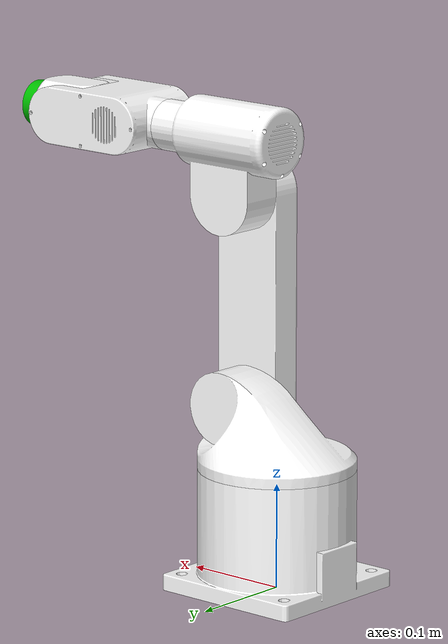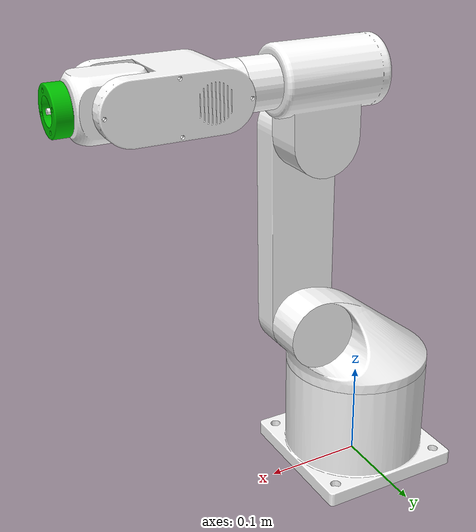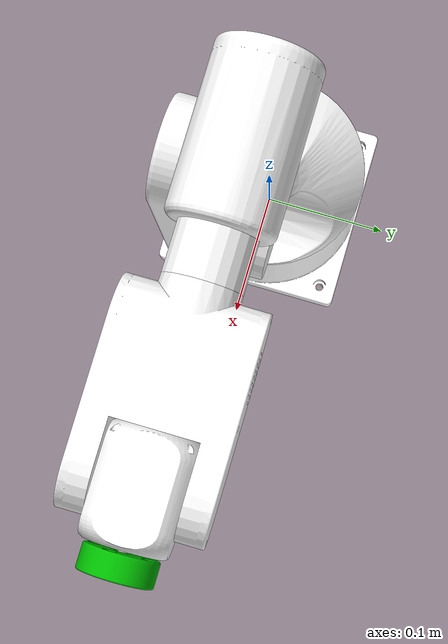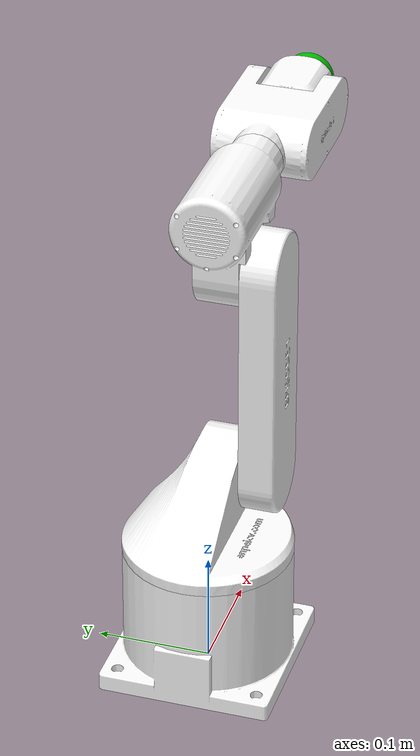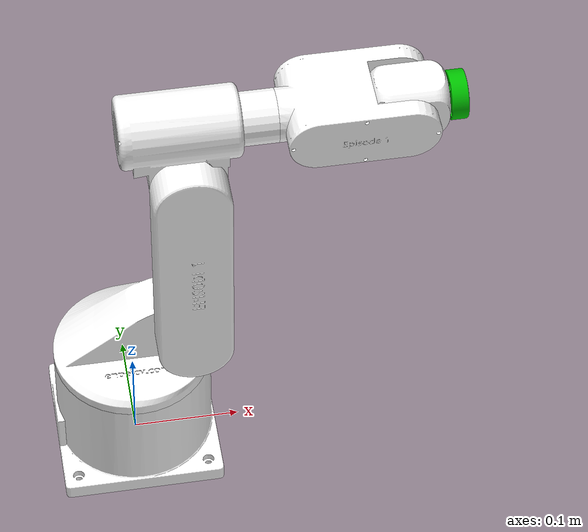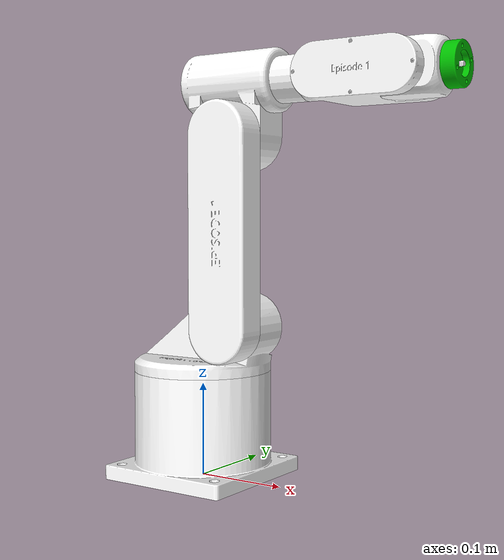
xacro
<?xml version="1.0"?>
<robot xmlns:xacro="http://www.ros.org/wiki/xacro" name="episode_urdf_0523">
    <xacro:arg name="initial_positions_file" default="initial_positions.yaml" />

    <!-- Import episode_urdf_0523 urdf file -->
    <xacro:include filename="$(find episode_description)/urdf/episode_urdf_0523.urdf" />

    <!-- Import control_xacro -->
    <xacro:include filename="episode_urdf_0523.ros2_control.xacro" />

    <xacro:episode_urdf_0523_ros2_control name="FakeSystem" initial_positions_file="$(arg initial_positions_file)"/>

</robot>

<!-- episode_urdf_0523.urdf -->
<robot
  name="episode_urdf_0523">
  <link
    name="base_link">
    <inertial>
      <origin
        xyz="0.0019218 -1.3509E-11 0.057216"
        rpy="0 0 0" />
      <mass
        value="1.9443" />
      <inertia
        ixx="0.005297"
        ixy="8.1761E-13"
        ixz="0.00014891"
        iyy="0.0050209"
        iyz="-1.1167E-13"
        izz="0.0057119" />
    </inertial>
    <visual>
      <origin
        xyz="0 0 0"
        rpy="0 0 0" />
      <geometry>
        <mesh
          filename="package://episode_description/meshes/base_link.STL" />
      </geometry>
      <material
        name="">
        <color
          rgba="1 1 1 1" />
      </material>
    </visual>
    <collision>
      <origin
        xyz="0 0 0"
        rpy="0 0 0" />
      <geometry>
        <mesh
          filename="package://episode_description/meshes/base_link.STL" />
      </geometry>
    </collision>
  </link>
  <link
    name="link1">
    <inertial>
      <origin
        xyz="0.012949 0.0048434 0.14285"
        rpy="0 0 0" />
      <mass
        value="0.86627" />
      <inertia
        ixx="0.0010939"
        ixy="5.5527E-05"
        ixz="-0.00028854"
        iyy="0.0016229"
        iyz="-4.302E-06"
        izz="0.0018824" />
    </inertial>
    <visual>
      <origin
        xyz="0 0 0"
        rpy="0 0 0" />
      <geometry>
        <mesh
          filename="package://episode_description/meshes/link1.STL" />
      </geometry>
      <material
        name="">
        <color
          rgba="1 1 1 1" />
      </material>
    </visual>
    <collision>
      <origin
        xyz="0 0 0"
        rpy="0 0 0" />
      <geometry>
        <mesh
          filename="package://episode_description/meshes/link1.STL" />
      </geometry>
    </collision>
  </link>
  <joint
    name="joint1"
    type="revolute">
    <origin
      xyz="0 0 0"
      rpy="0 0 0" />
    <parent
      link="base_link" />
    <child
      link="link1" />
    <axis
      xyz="0 0 1" />
    <limit
      lower="-3.14"
      upper="3.14"
      effort="100"
      velocity="1" />
  </joint>
  <link
    name="link2">
    <inertial>
      <origin
        xyz="-1.3288E-06 0.1 0.03596"
        rpy="0 0 0" />
      <mass
        value="0.79173" />
      <inertia
        ixx="0.004403"
        ixy="-2.5829E-09"
        ixz="1.6348E-08"
        iyy="0.00037227"
        iyz="-2.0295E-08"
        izz="0.0046408" />
    </inertial>
    <visual>
      <origin
        xyz="0 0 0"
        rpy="0 0 0" />
      <geometry>
        <mesh
          filename="package://episode_description/meshes/link2.STL" />
      </geometry>
      <material
        name="">
        <color
          rgba="1 1 1 1" />
        </material>
    </visual>
    <collision>
      <origin
        xyz="0 0 0"
        rpy="0 0 0" />
      <geometry>
        <mesh
          filename="package://episode_description/meshes/link2.STL" />
      </geometry>
    </collision>
  </link>
  <joint
    name="joint2"
    type="revolute">
    <origin
      xyz="0.055 0 0.1655"
      rpy="1.5708 0 0" />
    <parent
      link="link1" />
    <child
      link="link2" />
    <axis
      xyz="0 0 1" />
    <limit
      lower="-3.14"
      upper="3.14"
      effort="100"
      velocity="1" />
  </joint>
  <link
    name="link3">
    <inertial>
      <origin
        xyz="0.040489 -0.0050305 6.1192E-05"
        rpy="0 0 0" />
      <mass
        value="0.76426" />
      <inertia
        ixx="0.00091132"
        ixy="7.7087E-05"
        ixz="2.2459E-07"
        iyy="0.00086302"
        iyz="-5.7998E-07"
        izz="0.0014299" />
    </inertial>
    <visual>
      <origin
        xyz="0 0 0"
        rpy="0 0 0" />
      <geometry>
        <mesh
          filename="package://episode_description/meshes/link3.STL" />
      </geometry>
      <material
        name="">
        <color
          rgba="1 1 1 1" />
        </material>
    </visual>
    <collision>
      <origin
        xyz="0 0 0"
        rpy="0 0 0" />
      <geometry>
        <mesh
          filename="package://episode_description/meshes/link3.STL" />
      </geometry>
    </collision>
  </link>
  <joint
    name="joint3"
    type="revolute">
    <origin
      xyz="0 0.2 0"
      rpy="0 0 1.5708" />
    <parent
      link="link2" />
    <child
      link="link3" />
    <axis
      xyz="0 0 1" />
    <limit
      lower="-3.14"
      upper="3.14"
      effort="100"
      velocity="1" />
  </joint>
  <link
    name="link4">
    <inertial>
      <origin
        xyz="2.4145E-07 -5.2723E-05 -0.13259"
        rpy="0 0 0" />
      <mass
        value="0.55092" />
      <inertia
        ixx="0.00096716"
        ixy="4.291E-10"
        ixz="-8.5422E-10"
        iyy="0.00080979"
        iyz="1.2803E-08"
        izz="0.00040258" />
    </inertial>
    <visual>
      <origin
        xyz="0 0 0"
        rpy="0 0 0" />
      <geometry>
        <mesh
          filename="package://episode_description/meshes/link4.STL" />
      </geometry>
      <material
        name="">
        <color
          rgba="1 1 1 1" />
        </material>
    </visual>
    <collision>
      <origin
        xyz="0 0 0"
        rpy="0 0 0" />
      <geometry>
        <mesh
          filename="package://episode_description/meshes/link4.STL" />
      </geometry>
    </collision>
  </link>
  <joint
    name="joint4"
    type="revolute">
    <origin
      xyz="0.056 0 0"
      rpy="-1.5708 0 0" />
    <parent
      link="link3" />
    <child
      link="link4" />
    <axis
      xyz="0 0 1" />
    <limit
      lower="-3.14"
      upper="3.14"
      effort="100"
      velocity="1" />
  </joint>
  <link
    name="link5">
    <inertial>
      <origin
        xyz="1.5027E-06 -0.0082016 -2.0232E-07"
        rpy="0 0 0" />
      <mass
        value="0.21211" />
      <inertia
        ixx="9.3822E-05"
        ixy="-2.4717E-09"
        ixz="9.1477E-10"
        iyy="9.0774E-05"
        iyz="-8.0724E-10"
        izz="9.9734E-05" />
    </inertial>
    <visual>
      <origin
        xyz="0 0 0"
        rpy="0 0 0" />
      <geometry>
        <mesh
          filename="package://episode_description/meshes/link5.STL" />
      </geometry>
      <material
        name="">
        <color
          rgba="1 1 1 1" />
        </material>
    </visual>
    <collision>
      <origin
        xyz="0 0 0"
        rpy="0 0 0" />
      <geometry>
        <mesh
          filename="package://episode_description/meshes/link5.STL" />
      </geometry>
    </collision>
  </link>
  <joint
    name="joint5"
    type="revolute">
    <origin
      xyz="0 0 -0.192"
      rpy="1.5708 0 0" />
    <parent
      link="link4" />
    <child
      link="link5" />
    <axis
      xyz="0 0 1" />
    <limit
      lower="-3.14"
      upper="3.14"
      effort="100"
      velocity="1" />
  </joint>
  <link
    name="link6">
    <inertial>
      <origin
        xyz="-5.5511E-17 7.8726E-16 0.047097"
        rpy="0 0 0" />
      <mass
        value="0.023787" />
      <inertia
        ixx="3.7132E-06"
        ixy="-1.7262E-21"
        ixz="-5.5809E-24"
        iyy="3.7132E-06"
        iyz="-1.5385E-22"
        izz="6.5852E-06" />
    </inertial>
    <visual>
      <origin
        xyz="0 0 0"
        rpy="0 0 0" />
      <geometry>
        <mesh
          filename="package://episode_description/meshes/link6.STL" />
      </geometry>
      <material
        name="">
        <color
          rgba="0 0.75294 0 1" />
        </material>
    </visual>
    <collision>
      <origin
        xyz="0 0 0"
        rpy="0 0 0" />
      <geometry>
        <mesh
          filename="package://episode_description/meshes/link6.STL" />
      </geometry>
    </collision>
  </link>
  <joint
    name="joint6"
    type="revolute">
    <origin
      xyz="0 0 0"
      rpy="1.5708 0 0" />
    <parent
      link="link5" />
    <child
      link="link6" />
    <axis
      xyz="0 0 1" />
    <limit
      lower="-3.14"
      upper="3.14"
      effort="100"
      velocity="1" />
  </joint>
  <!-- === TCP 帧：放在法兰中心 === -->
  <link name="tool0">
    <!-- 惯量可极小，或直接省略 inertial -->
    <inertial>
      <origin xyz="0 0 0" rpy="0 0 0"/>
      <mass value="1e-6"/>
      <inertia ixx="1e-6" ixy="0" ixz="0" iyy="1e-6" iyz="0" izz="1e-6"/>
    </inertial>
  </link>

  <joint name="joint_tool0" type="fixed">
    <parent link="link6"/>
    <child link="tool0"/>
    <!-- 这里是“从 link6 到法兰中心”的位姿偏置：先估，RViz 里看 TF 再改 -->
    <origin xyz="0 0 0.055" rpy="0 0 0"/>
  </joint>
</robot>
